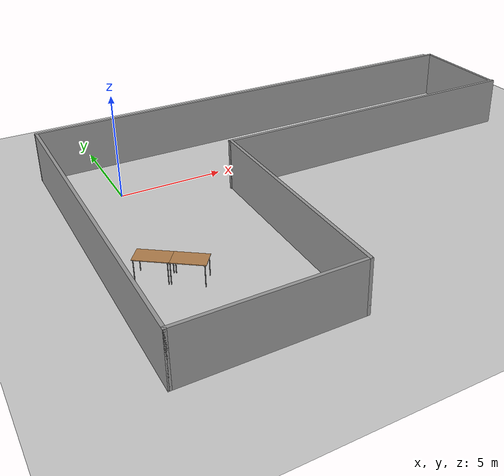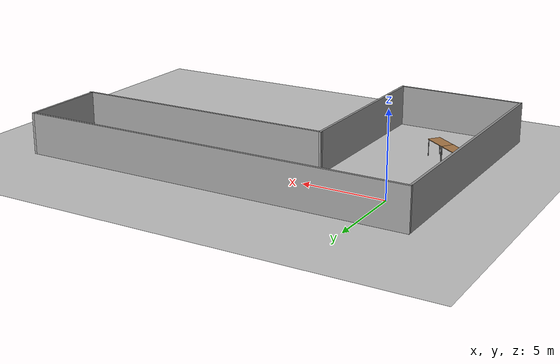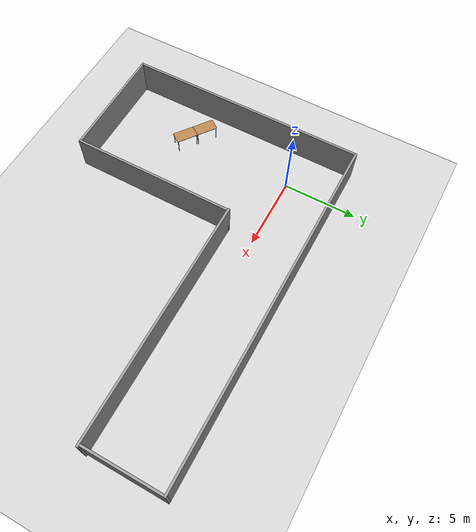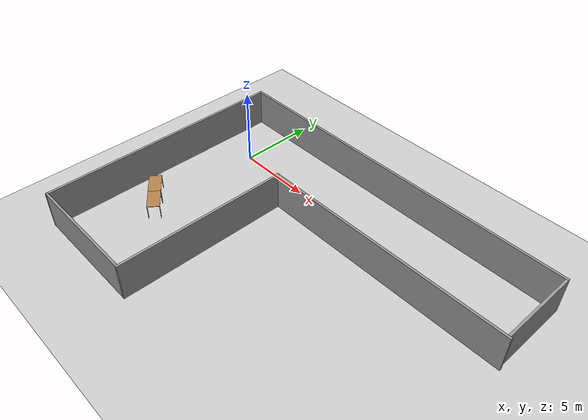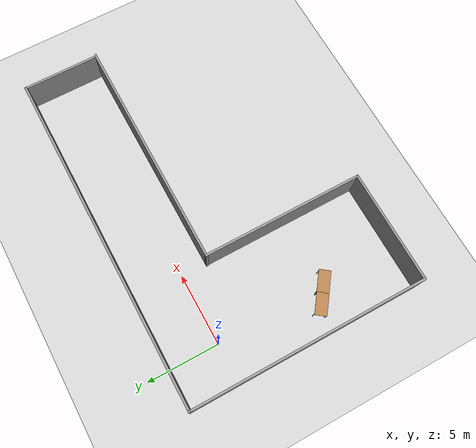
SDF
<sdf version="1.6">
 <world name="default">
  <light name="sun" type="directional">
   <pose>0 0 10 0 -0 0</pose>
   <diffuse>0.8 0.8 0.8 1</diffuse>
   <specular>0.2 0.2 0.2 1</specular>
   <attenuation>
    <range>1000</range>
    <constant>0.9</constant>
    <linear>0.01</linear>
    <quadratic>0.001</quadratic>
   </attenuation>
   <direction>-0.5 0.1 -0.9</direction>
  </light>
  <model name="ground_plane">
   <static>1</static>
   <link name="link">
    <collision name="collision">
     <geometry><plane><normal>0 0 1</normal><size>100 100</size></plane></geometry>
     <surface>
      <contact><collide_bitmask>65535</collide_bitmask></contact>
      <friction><ode><mu>100</mu><mu2>50</mu2></ode></friction>
     </surface>
    </collision>
    <visual name="visual">
     <cast_shadows>0</cast_shadows>
     <geometry><plane><normal>0 0 1</normal><size>100 100</size></plane></geometry>
     <material>
      <script><uri>file://media/materials/scripts/gazebo.material</uri><name>Gazebo/Grey</name></script>
     </material>
    </visual>
   </link>
  </model>
  <gravity>0 0 -9.8</gravity>
  <magnetic_field>6e-06 2.3e-05 -4.2e-05</magnetic_field>
  <atmosphere type="adiabatic"/>
  <physics name="default_physics" default="0" type="ode">
   <max_step_size>0.001</max_step_size>
   <real_time_factor>1</real_time_factor>
   <real_time_update_rate>1000</real_time_update_rate>
  </physics>
  <scene><ambient>0.4 0.4 0.4 1</ambient><background>0.7 0.7 0.7 1</background><shadows>1</shadows></scene>
  <spherical_coordinates>
   <surface_model>EARTH_WGS84</surface_model>
   <latitude_deg>0</latitude_deg>
   <longitude_deg>0</longitude_deg>
   <elevation>0</elevation>
   <heading_deg>0</heading_deg>
  </spherical_coordinates>
  <model name="Untitled">
   <pose>9.17277 -4.74173 0 0 -0 0</pose>
   <link name="Wall_3">
    <collision name="Wall_3_Collision">
     <geometry><box><size>24 0.15 2.5</size></box></geometry>
     <pose>0 0 1.25 0 -0 0</pose>
    </collision>
    <visual name="Wall_3_Visual">
     <pose>0 0 1.25 0 -0 0</pose>
     <geometry><box><size>24 0.15 2.5</size></box></geometry>
     <material>
      <script><uri>file://media/materials/scripts/gazebo.material</uri><name>Gazebo/Grey</name></script>
      <ambient>1 1 1 1</ambient>
     </material>
     <meta><layer>0</layer></meta>
    </visual>
    <pose>-0.049999 8.175 0 0 -0 3.14159</pose>
   </link>
   <link name="Wall_4">
    <collision name="Wall_4_Collision">
     <geometry><box><size>16.5 0.15 2.5</size></box></geometry>
     <pose>0 0 1.25 0 -0 0</pose>
    </collision>
    <visual name="Wall_4_Visual">
     <pose>0 0 1.25 0 -0 0</pose>
     <geometry><box><size>16.5 0.15 2.5</size></box></geometry>
     <material>
      <script><uri>file://media/materials/scripts/gazebo.material</uri><name>Gazebo/Grey</name></script>
      <ambient>1 1 1 1</ambient>
     </material>
     <meta><layer>0</layer></meta>
    </visual>
    <pose>-11.975 0 0 0 0 -1.5708</pose>
   </link>
   <link name="Wall_5">
    <collision name="Wall_5_Collision">
     <geometry><box><size>7.82289 0.15 2.5</size></box></geometry>
     <pose>0 0 1.25 0 -0 0</pose>
    </collision>
    <visual name="Wall_5_Visual">
     <pose>0 0 1.25 0 -0 0</pose>
     <geometry><box><size>7.82289 0.15 2.5</size></box></geometry>
     <material>
      <script><uri>file://media/materials/scripts/gazebo.material</uri><name>Gazebo/Grey</name></script>
      <ambient>1 1 1 1</ambient>
     </material>
     <meta><layer>0</layer></meta>
    </visual>
    <pose>-8.13856 -8.175 0 0 -0 0</pose>
   </link>
   <link name="Wall_6">
    <collision name="Wall_6_Collision">
     <geometry><box><size>11.25 0.15 2.5</size></box></geometry>
     <pose>0 0 1.25 0 -0 0</pose>
    </collision>
    <visual name="Wall_6_Visual">
     <pose>0 0 1.25 0 -0 0</pose>
     <geometry><box><size>11.25 0.15 2.5</size></box></geometry>
     <material>
      <script><uri>file://media/materials/scripts/gazebo.material</uri><name>Gazebo/Grey</name></script>
      <ambient>1 1 1 1</ambient>
     </material>
     <meta><layer>0</layer></meta>
    </visual>
    <pose>-4.25931 -2.625 0 0 -0 1.5708</pose>
   </link>
   <link name="Wall_7">
    <collision name="Wall_7_Collision">
     <geometry><box><size>16.4271 0.15 2.5</size></box></geometry>
     <pose>0 0 1.25 0 -0 0</pose>
    </collision>
    <visual name="Wall_7_Visual">
     <pose>0 0 1.25 0 -0 0</pose>
     <geometry><box><size>16.4271 0.15 2.5</size></box></geometry>
     <material>
      <script><uri>file://media/materials/scripts/gazebo.material</uri><name>Gazebo/Grey</name></script>
      <ambient>1 1 1 1</ambient>
     </material>
     <meta><layer>0</layer></meta>
    </visual>
    <pose>3.83644 2.925 0 0 -0 0</pose>
   </link>
   <link name="Wall_9">
    <collision name="Wall_9_Collision">
     <geometry><box><size>5.25 0.15 2.5</size></box></geometry>
     <pose>0 0 1.25 0 -0 0</pose>
    </collision>
    <visual name="Wall_9_Visual">
     <pose>0 0 1.25 0 -0 0</pose>
     <geometry><box><size>5.25 0.15 2.5</size></box></geometry>
     <material>
      <script><uri>file://media/materials/scripts/gazebo.material</uri><name>Gazebo/Grey</name></script>
      <ambient>1 1 1 1</ambient>
     </material>
     <meta><layer>0</layer></meta>
    </visual>
    <pose>11.875 5.625 0 0 0 -1.5708</pose>
   </link>
   <static>1</static>
  </model>
  <model name="table">
   <static>1</static>
   <link name="link">
    <collision name="surface">
     <pose>0 0 1 0 -0 0</pose>
     <geometry><box><size>1.5 0.8 0.03</size></box></geometry>
     <surface><friction><ode><mu>0.6</mu><mu2>0.6</mu2></ode></friction></surface>
    </collision>
    <visual name="visual1">
     <pose>0 0 1 0 -0 0</pose>
     <geometry><box><size>1.5 0.8 0.03</size></box></geometry>
     <material>
      <script><uri>file://media/materials/scripts/gazebo.material</uri><name>Gazebo/Wood</name></script>
     </material>
    </visual>
    <collision name="front_left_leg">
     <pose>0.68 0.38 0.5 0 -0 0</pose>
     <geometry><cylinder><radius>0.02</radius><length>1</length></cylinder></geometry>
    </collision>
    <visual name="front_left_leg">
     <pose>0.68 0.38 0.5 0 -0 0</pose>
     <geometry><cylinder><radius>0.02</radius><length>1</length></cylinder></geometry>
     <material>
      <script><uri>file://media/materials/scripts/gazebo.material</uri><name>Gazebo/Grey</name></script>
     </material>
    </visual>
    <collision name="front_right_leg">
     <pose>0.68 -0.38 0.5 0 -0 0</pose>
     <geometry><cylinder><radius>0.02</radius><length>1</length></cylinder></geometry>
    </collision>
    <visual name="front_right_leg">
     <pose>0.68 -0.38 0.5 0 -0 0</pose>
     <geometry><cylinder><radius>0.02</radius><length>1</length></cylinder></geometry>
     <material>
      <script><uri>file://media/materials/scripts/gazebo.material</uri><name>Gazebo/Grey</name></script>
     </material>
    </visual>
    <collision name="back_right_leg">
     <pose>-0.68 -0.38 0.5 0 -0 0</pose>
     <geometry><cylinder><radius>0.02</radius><length>1</length></cylinder></geometry>
    </collision>
    <visual name="back_right_leg">
     <pose>-0.68 -0.38 0.5 0 -0 0</pose>
     <geometry><cylinder><radius>0.02</radius><length>1</length></cylinder></geometry>
     <material>
      <script><uri>file://media/materials/scripts/gazebo.material</uri><name>Gazebo/Grey</name></script>
     </material>
    </visual>
    <collision name="back_left_leg">
     <pose>-0.68 0.38 0.5 0 -0 0</pose>
     <geometry><cylinder><radius>0.02</radius><length>1</length></cylinder></geometry>
    </collision>
    <visual name="back_left_leg">
     <pose>-0.68 0.38 0.5 0 -0 0</pose>
     <geometry><cylinder><radius>0.02</radius><length>1</length></cylinder></geometry>
     <material>
      <script><uri>file://media/materials/scripts/gazebo.material</uri><name>Gazebo/Grey</name></script>
     </material>
    </visual>
   </link>
   <pose>-0.99903 -6.89607 0 0 0 -0.63954</pose>
  </model>
  <model name="table_clone">
   <static>1</static>
   <link name="link">
    <collision name="surface">
     <pose>0 0 1 0 -0 0</pose>
     <geometry><box><size>1.5 0.8 0.03</size></box></geometry>
     <surface><friction><ode><mu>0.6</mu><mu2>0.6</mu2></ode></friction></surface>
    </collision>
    <visual name="visual1">
     <pose>0 0 1 0 -0 0</pose>
     <geometry><box><size>1.5 0.8 0.03</size></box></geometry>
     <material>
      <script><uri>file://media/materials/scripts/gazebo.material</uri><name>Gazebo/Wood</name></script>
     </material>
    </visual>
    <collision name="front_left_leg">
     <pose>0.68 0.38 0.5 0 -0 0</pose>
     <geometry><cylinder><radius>0.02</radius><length>1</length></cylinder></geometry>
    </collision>
    <visual name="front_left_leg">
     <pose>0.68 0.38 0.5 0 -0 0</pose>
     <geometry><cylinder><radius>0.02</radius><length>1</length></cylinder></geometry>
     <material>
      <script><uri>file://media/materials/scripts/gazebo.material</uri><name>Gazebo/Grey</name></script>
     </material>
    </visual>
    <collision name="front_right_leg">
     <pose>0.68 -0.38 0.5 0 -0 0</pose>
     <geometry><cylinder><radius>0.02</radius><length>1</length></cylinder></geometry>
    </collision>
    <visual name="front_right_leg">
     <pose>0.68 -0.38 0.5 0 -0 0</pose>
     <geometry><cylinder><radius>0.02</radius><length>1</length></cylinder></geometry>
     <material>
      <script><uri>file://media/materials/scripts/gazebo.material</uri><name>Gazebo/Grey</name></script>
     </material>
    </visual>
    <collision name="back_right_leg">
     <pose>-0.68 -0.38 0.5 0 -0 0</pose>
     <geometry><cylinder><radius>0.02</radius><length>1</length></cylinder></geometry>
    </collision>
    <visual name="back_right_leg">
     <pose>-0.68 -0.38 0.5 0 -0 0</pose>
     <geometry><cylinder><radius>0.02</radius><length>1</length></cylinder></geometry>
     <material>
      <script><uri>file://media/materials/scripts/gazebo.material</uri><name>Gazebo/Grey</name></script>
     </material>
    </visual>
    <collision name="back_left_leg">
     <pose>-0.68 0.38 0.5 0 -0 0</pose>
     <geometry><cylinder><radius>0.02</radius><length>1</length></cylinder></geometry>
    </collision>
    <visual name="back_left_leg">
     <pose>-0.68 0.38 0.5 0 -0 0</pose>
     <geometry><cylinder><radius>0.02</radius><length>1</length></cylinder></geometry>
     <material>
      <script><uri>file://media/materials/scripts/gazebo.material</uri><name>Gazebo/Grey</name></script>
     </material>
    </visual>
   </link>
   <pose>0.172258 -7.7653 0 0 0 -0.63954</pose>
  </model>
 </world>
</sdf>
